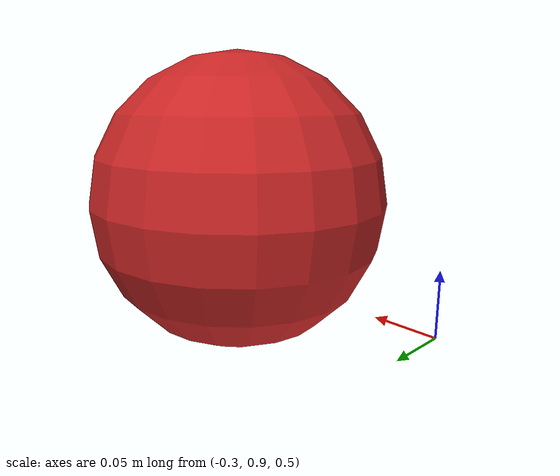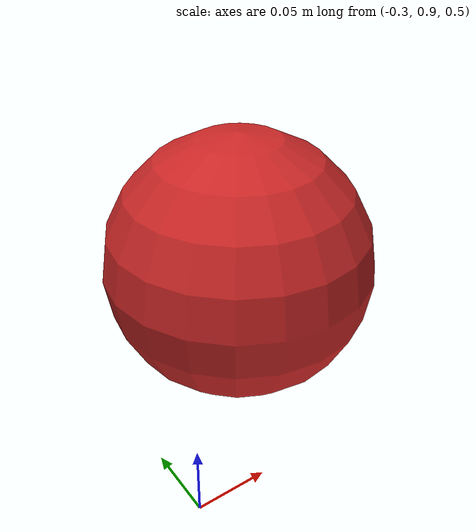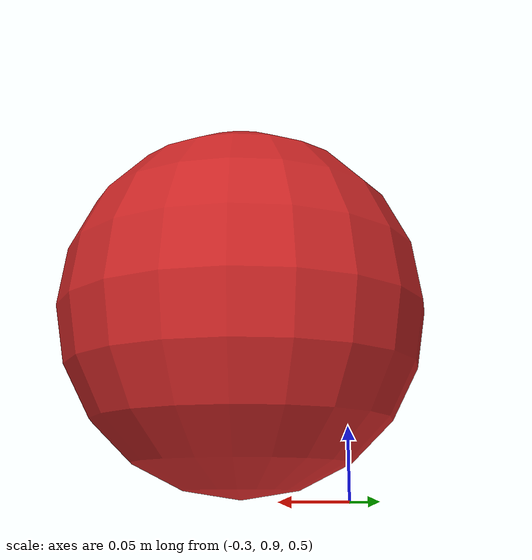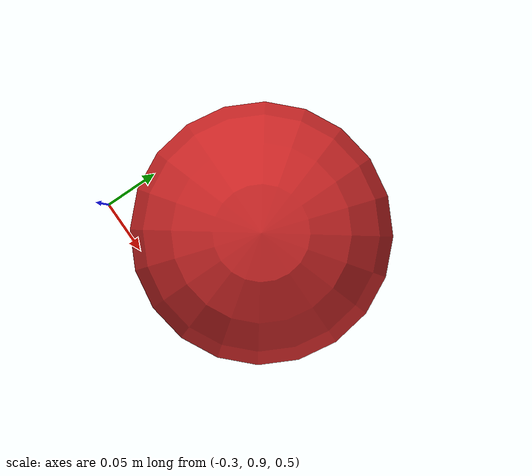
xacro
<?xml version="1.0"?>
<robot name="ball2" xmlns:xacro="http:/www.ros.org/wiki/xacro">

  <xacro:include filename="$(find test_gazebo_camera)/urdf/ball2.gazebo"/>
  <xacro:include filename="$(find test_gazebo_camera)/urdf/materials.xacro"/>

  <link name="world"/>
  <joint name="fix" type="fixed">
    <origin xyz = "0 0 0.5" rpy="0 0 0"/>
    <parent link = "world"/>
    <child link = "link1"/>
  </joint>

  <link name="link1">
    <collision>
      <origin xyz = "-0.2 1 0.1" rpy="0 0 0"/>
      <geometry>
        <sphere radius="0.1"/>
      </geometry>
    </collision>

    <visual>
      <origin xyz = "-0.2 1 0.1" rpy="0 0 0"/>
      <geometry>
        <sphere radius="0.1"/>
      </geometry>
      <material name="red"/>
    </visual>

    <inertial>
      <mass value = "0.001"/>
      <origin xyz = "-0.2 1 0.1" rpy="0 0 0"/>
      <inertia ixx="0.0001" ixy = "0" ixz = "0" iyy= "0.0001" iyz="0" izz="0.0001"/>
    </inertial>
  </link>
</robot>
